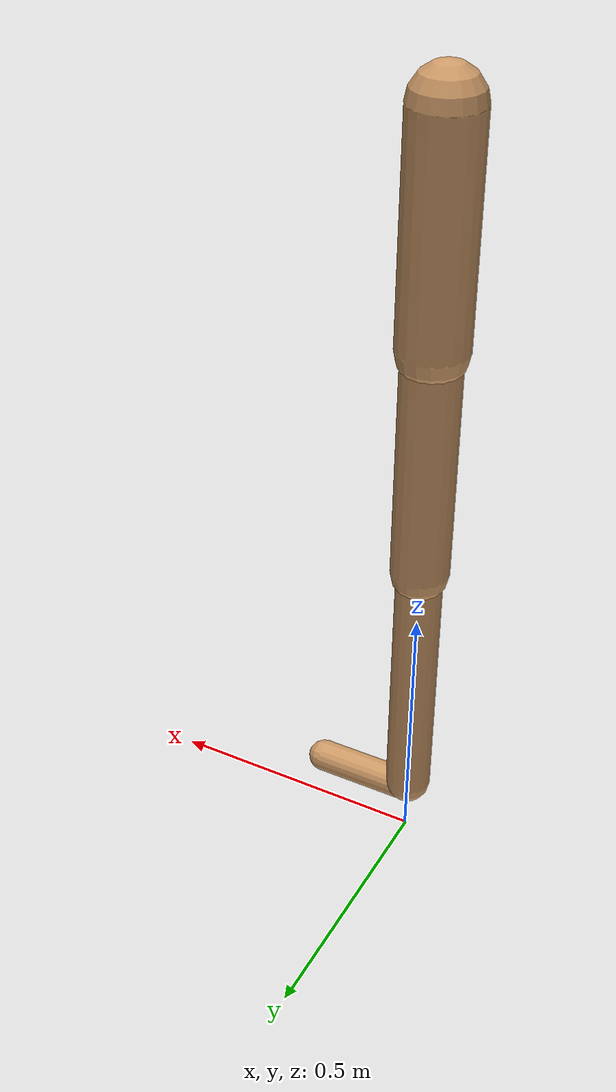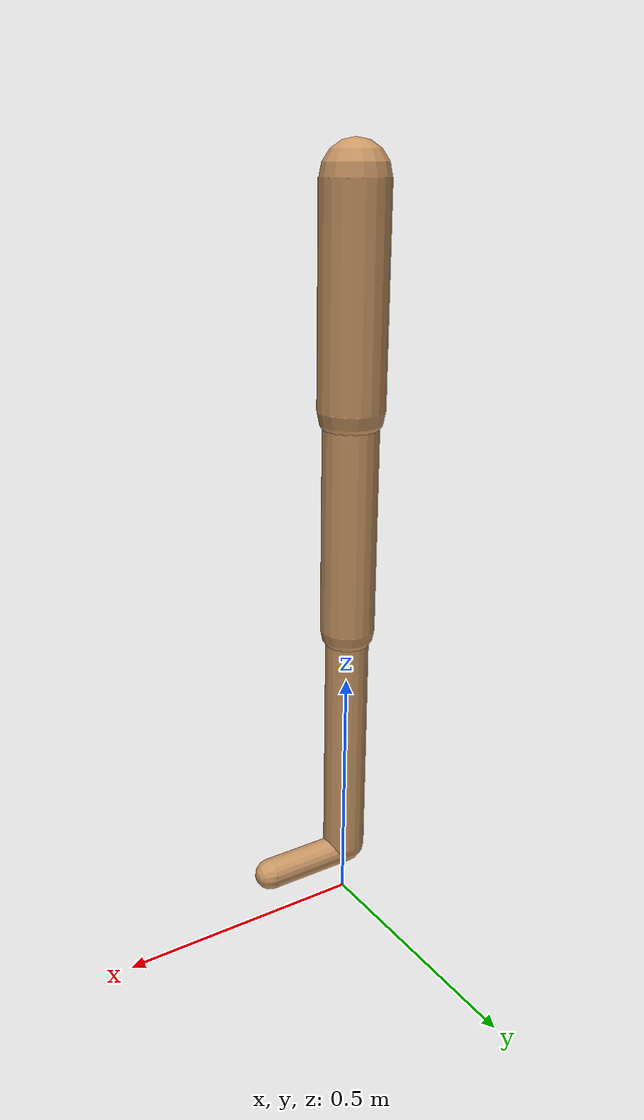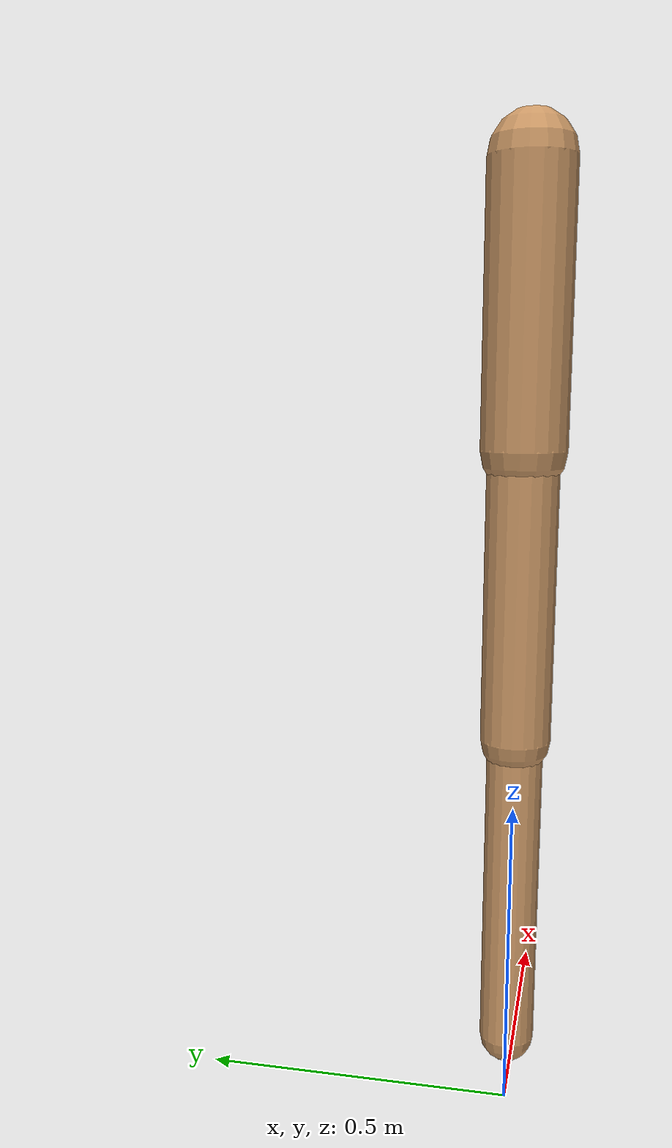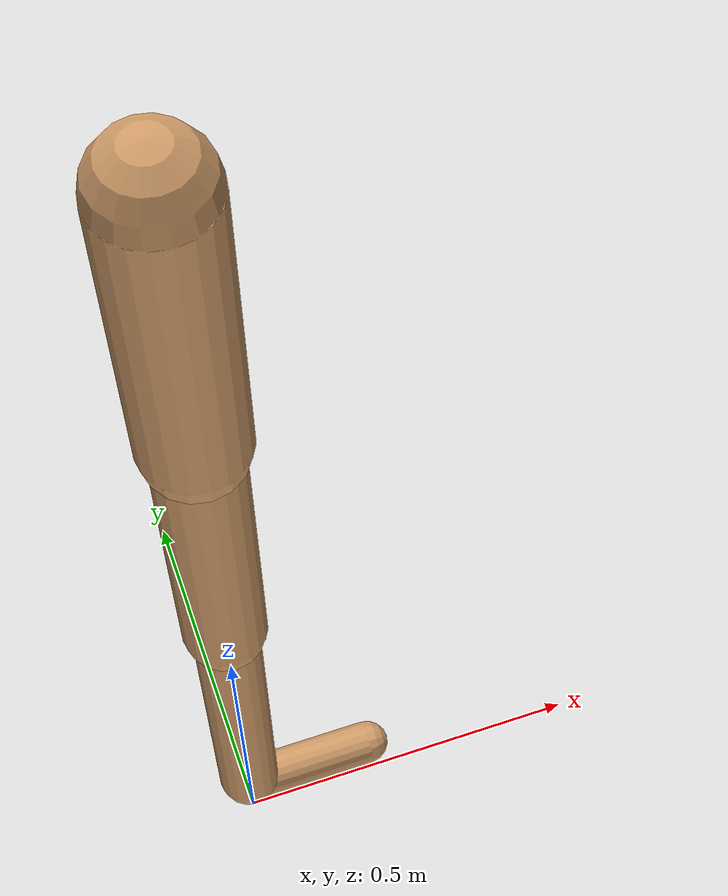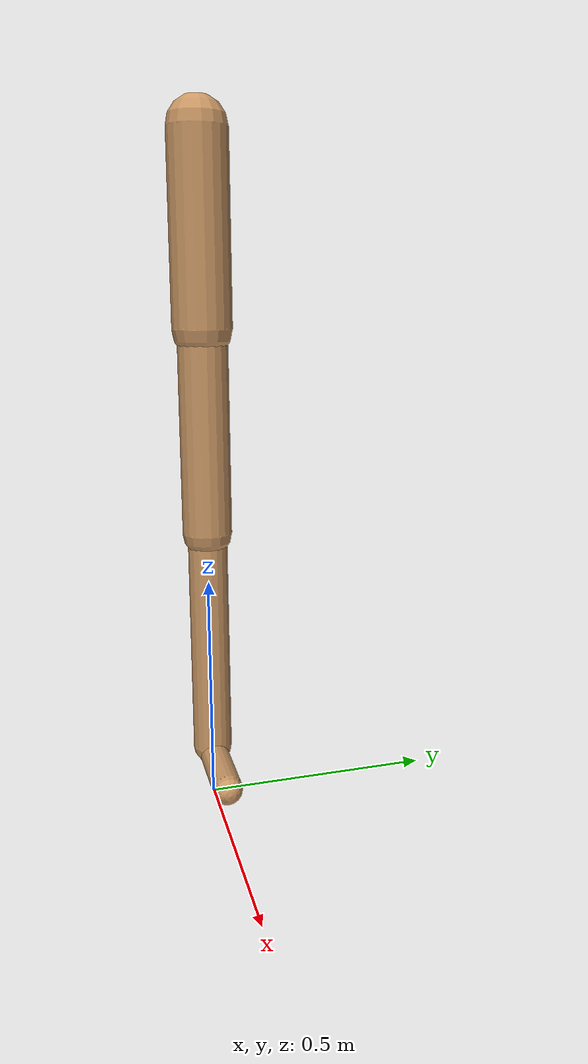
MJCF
<mujoco model="walker2d">
  <compiler angle="degree" coordinate="global" inertiafromgeom="true" />
  <default>
    <joint armature="0.01" damping=".1" limited="true" />
    <geom conaffinity="0" condim="3" contype="1" density="1000" friction="0.8 .1 .1" rgba="0.8 0.6 .4 1" />
  </default>
  <option integrator="RK4" timestep="0.002" />
  <worldbody>

    <body name="torso" pos="0 0 -0.029453042700261958">
      <joint armature="0" axis="1 0 0" damping="0" limited="false" name="ignorex" pos="0 0 0" stiffness="0" type="slide" />
      <joint armature="0" axis="0 0 1" damping="0" limited="false" name="ignorez" pos="0 0 0" ref="1.25" stiffness="0" type="slide" />
      <joint armature="0" axis="0 1 0" damping="0" limited="false" name="ignorey" pos="0 0 0" stiffness="0" type="hinge" />
      <geom fromto="0 0 1.45 0 0 1.05" name="torso_geom" size="0.06375642429026765" type="capsule" />
      <body name="thigh">
        <joint axis="0 -1 0" name="thigh_joint" pos="0 0 1.05" range="-150 0" type="hinge" />
        <geom fromto="0.0 0.0 1.05 0.0 0.0 0.6139514412790714" name="thigh_geom" size="0.05351101535594255" type="capsule" />
        <body name="leg" pos="0.0 0.0 0.013951441279071441">
          <joint axis="0 -1 0" name="leg_joint" pos="0 0 0.6" range="-150 0" type="hinge" />
          <geom fromto="0.0 0.0 0.6 0.0 0.0 0.11550160142119051" name="leg_geom" size="0.04280881228475404" type="capsule" />
          <body name="foot" pos="0.0 0.0 0.015501601421190503">
            <joint axis="0 -1 0" name="foot_joint" pos="0 0 0.1" range="-45 45" type="hinge" />
            <geom fromto="0.0 0.0 0.1 0.1828583709295414 0.0 0.1" name="foot_geom" size="0.031133202305177705" type="capsule" />
          </body>
        </body>
      </body>

      <body name="thigh_left">
        <joint axis="0 -1 0" name="thigh_left_joint" pos="0 0 1.05" range="-150 0" type="hinge" />
        <geom fromto="0.0 0.0 1.05 0.0 0.0 0.6139514412790714" name="thigh_left_geom" rgba=".7 .3 .6 1" size="0.05351101535594255" type="capsule" />
        <body name="leg_left" pos="0.0 0.0 0.013951441279071441">
          <joint axis="0 -1 0" name="leg_left_joint" pos="0 0 0.6" range="-150 0" type="hinge" />
          <geom fromto="0.0 0.0 0.6 0.0 0.0 0.11550160142119051" name="leg_left_geom" rgba=".7 .3 .6 1" size="0.04280881228475404" type="capsule" />
          <body name="foot_left" pos="0.0 0.0 0.015501601421190503">
            <joint axis="0 -1 0" name="foot_left_joint" pos="0 0 0.1" range="-45 45" type="hinge" />
            <geom fromto="0.0 0.0 0.1 0.1828583709295414 0.0 0.1" name="foot_left_geom" rgba=".7 .3 .6 1" size="0.031133202305177705" type="capsule" />
          </body>
        </body>
      </body>
    </body>
  </worldbody>
  <actuator>

    <motor ctrllimited="true" ctrlrange="-1.0 1.0" gear="100" joint="thigh_joint" />
    <motor ctrllimited="true" ctrlrange="-1.0 1.0" gear="100" joint="leg_joint" />
    <motor ctrllimited="true" ctrlrange="-1.0 1.0" gear="100" joint="foot_joint" />
    <motor ctrllimited="true" ctrlrange="-1.0 1.0" gear="100" joint="thigh_left_joint" />
    <motor ctrllimited="true" ctrlrange="-1.0 1.0" gear="100" joint="leg_left_joint" />
    <motor ctrllimited="true" ctrlrange="-1.0 1.0" gear="100" joint="foot_left_joint" />

  </actuator>
</mujoco>
